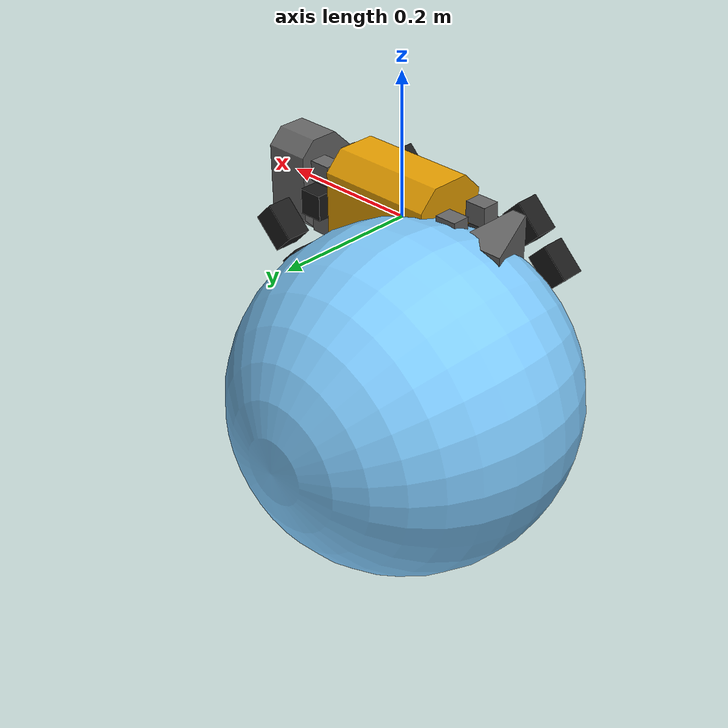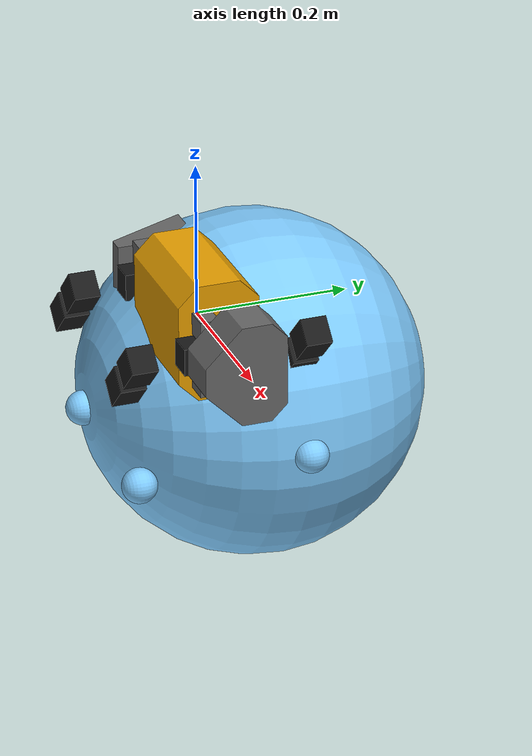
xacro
<?xml version="1.0"?>
<!-- created with Phobos 1.0.1 "Capricious Choutengan" -->
  <robot name="Arctic" xmlns:xacro="http://www.ros.org/wiki/xacro">

    <link name="foot_-12">
      <inertial>
        <origin xyz="0 0 0" rpy="0 0 0"/>
        <mass value="0.1"/>
        <inertia ixx="0.001" ixy="0" ixz="0" iyy="0.001" iyz="0" izz="0.001"/>
      </inertial>
      <visual name="-12">
        <origin xyz="0 0 0.00024" rpy="1.5708 0 0"/>
        <geometry>
          <mesh filename="package://arc_description/meshes/stl/Sphere.003.stl" scale="1.0 1.0 1.0"/>
        </geometry>
        <material name="blue"/>
      </visual>
      <collision name="-12">
        <origin xyz="0 0 0.00024" rpy="1.5708 0 0"/>
        <geometry>
          <sphere radius="0.02278"/>
        </geometry>
      </collision>
    </link>

    <link name="foot_-3">
      <inertial>
        <origin xyz="0 0 0" rpy="0 0 0"/>
        <mass value="0.1"/>
        <inertia ixx="0.001" ixy="0" ixz="0" iyy="0.001" iyz="0" izz="0.001"/>
      </inertial>
      <visual name="-3">
        <origin xyz="0 0 -0.00024" rpy="-1.5708 0 0"/>
        <geometry>
          <mesh filename="package://arc_description/meshes/stl/Sphere.001.stl" scale="1.0 1.0 1.0"/>
        </geometry>
        <material name="blue"/>
      </visual>
      <collision name="-3">
        <origin xyz="0 0 -0.00024" rpy="-1.5708 0 0"/>
        <geometry>
          <sphere radius="0.02278"/>
        </geometry>
      </collision>
    </link>

    <link name="foot_-6">
      <inertial>
        <origin xyz="0 0 0" rpy="0 0 0"/>
        <mass value="0.1"/>
        <inertia ixx="0.001" ixy="0" ixz="0" iyy="0.001" iyz="0" izz="0.001"/>
      </inertial>
      <visual name="-6">
        <origin xyz="0 0 0.00024" rpy="1.5708 0 0"/>
        <geometry>
          <mesh filename="package://arc_description/meshes/stl/Sphere.stl" scale="1.0 1.0 1.0"/>
        </geometry>
        <material name="blue"/>
      </visual>
      <collision name="-6">
        <origin xyz="0 0 0.00024" rpy="1.5708 0 0"/>
        <geometry>
          <sphere radius="0.02278"/>
        </geometry>
      </collision>
    </link>

    <link name="foot_-9">
      <inertial>
        <origin xyz="0 0 0" rpy="0 0 0"/>
        <mass value="0.1"/>
        <inertia ixx="0.001" ixy="0" ixz="0" iyy="0.001" iyz="0" izz="0.001"/>
      </inertial>
      <visual name="-9">
        <origin xyz="0 0 -0.00024" rpy="-1.5708 0 0"/>
        <geometry>
          <mesh filename="package://arc_description/meshes/stl/Sphere.002.stl" scale="1.0 1.0 1.0"/>
        </geometry>
        <material name="blue"/>
      </visual>
      <collision name="-9">
        <origin xyz="0 0 -0.00024" rpy="-1.5708 0 0"/>
        <geometry>
          <sphere radius="0.02278"/>
        </geometry>
      </collision>
    </link>

    <link name="foot_1">
      <inertial>
        <origin xyz="0 0 0" rpy="0 0 0"/>
        <mass value="0.1"/>
        <inertia ixx="0.001" ixy="0" ixz="0" iyy="0.001" iyz="0" izz="0.001"/>
      </inertial>
      <visual name="-1">
        <origin xyz="0.00555 -0.06477 -0.00559" rpy="0 -0.7854 0"/>
        <geometry>
          <box size="0.0356 0.03427 0.0506"/>
        </geometry>
        <material name="black"/>
      </visual>
      <collision name="-1">
        <origin xyz="0.00555 -0.06477 -0.00559" rpy="0 -0.7854 0"/>
        <geometry>
          <box size="0.0356 0.03427 0.0506"/>
        </geometry>
      </collision>
    </link>

    <link name="foot_10">
      <inertial>
        <origin xyz="0 0 0" rpy="0 0 0"/>
        <mass value="0.1"/>
        <inertia ixx="0.001" ixy="0" ixz="0" iyy="0.001" iyz="0" izz="0.001"/>
      </inertial>
      <visual name="-10">
        <origin xyz="-0.00555 0.06525 0.00558" rpy="0 2.35619 0"/>
        <geometry>
          <box size="0.0356 0.03427 0.0506"/>
        </geometry>
        <material name="black"/>
      </visual>
      <collision name="-10">
        <origin xyz="-0.00555 0.06525 0.00558" rpy="0 2.35619 0"/>
        <geometry>
          <box size="0.0356 0.03427 0.0506"/>
        </geometry>
      </collision>
    </link>

    <link name="foot_11">
      <inertial>
        <origin xyz="0 0 0" rpy="0 0 0"/>
        <mass value="0.1"/>
        <inertia ixx="0.001" ixy="0" ixz="0" iyy="0.001" iyz="0" izz="0.001"/>
      </inertial>
      <visual name="-11">
        <origin xyz="-0.03656 0.03692 0.00021" rpy="1.5708 0 0.7854"/>
        <geometry>
          <box size="0.0356 0.03427 0.0506"/>
        </geometry>
        <material name="black"/>
      </visual>
      <collision name="-11">
        <origin xyz="-0.03656 0.03692 0.00021" rpy="1.5708 0 0.7854"/>
        <geometry>
          <box size="0.0356 0.03427 0.0506"/>
        </geometry>
      </collision>
    </link>

    <link name="foot_12">
      <inertial>
        <origin xyz="0 0 0" rpy="0 0 0"/>
        <mass value="0.1"/>
        <inertia ixx="0.001" ixy="0" ixz="0" iyy="0.001" iyz="0" izz="0.001"/>
      </inertial>
    </link>

    <link name="foot_2">
      <inertial>
        <origin xyz="0 0 0" rpy="0 0 0"/>
        <mass value="0.1"/>
        <inertia ixx="0.001" ixy="0" ixz="0" iyy="0.001" iyz="0" izz="0.001"/>
      </inertial>
      <visual name="-2">
        <origin xyz="-0.03656 -0.03692 -0.00027" rpy="-1.5708 0 -0.7854"/>
        <geometry>
          <box size="0.0356 0.03427 0.0506"/>
        </geometry>
        <material name="black"/>
      </visual>
      <collision name="-2">
        <origin xyz="-0.03656 -0.03692 -0.00027" rpy="-1.5708 0 -0.7854"/>
        <geometry>
          <box size="0.0356 0.03427 0.0506"/>
        </geometry>
      </collision>
    </link>

    <link name="foot_3">
      <inertial>
        <origin xyz="0 0 0" rpy="0 0 0"/>
        <mass value="0.1"/>
        <inertia ixx="0.001" ixy="0" ixz="0" iyy="0.001" iyz="0" izz="0.001"/>
      </inertial>
    </link>

    <link name="foot_4">
      <inertial>
        <origin xyz="0 0 0" rpy="0 0 0"/>
        <mass value="0.1"/>
        <inertia ixx="0.001" ixy="0" ixz="0" iyy="0.001" iyz="0" izz="0.001"/>
      </inertial>
      <visual name="-4">
        <origin xyz="0.00555 0.06525 -0.00559" rpy="0 -0.7854 0"/>
        <geometry>
          <box size="0.0356 0.03427 0.0506"/>
        </geometry>
        <material name="black"/>
      </visual>
      <collision name="-4">
        <origin xyz="0.00555 0.06525 -0.00559" rpy="0 -0.7854 0"/>
        <geometry>
          <box size="0.0356 0.03427 0.0506"/>
        </geometry>
      </collision>
    </link>

    <link name="foot_5">
      <inertial>
        <origin xyz="0 0 0" rpy="0 0 0"/>
        <mass value="0.1"/>
        <inertia ixx="0.001" ixy="0" ixz="0" iyy="0.001" iyz="0" izz="0.001"/>
      </inertial>
      <visual name="-5">
        <origin xyz="-0.03656 0.03692 0.00021" rpy="1.5708 0 0.7854"/>
        <geometry>
          <box size="0.0356 0.03427 0.0506"/>
        </geometry>
        <material name="black"/>
      </visual>
      <collision name="-5">
        <origin xyz="-0.03656 0.03692 0.00021" rpy="1.5708 0 0.7854"/>
        <geometry>
          <box size="0.0356 0.03427 0.0506"/>
        </geometry>
      </collision>
    </link>

    <link name="foot_6">
      <inertial>
        <origin xyz="0 0 0" rpy="0 0 0"/>
        <mass value="0.1"/>
        <inertia ixx="0.001" ixy="0" ixz="0" iyy="0.001" iyz="0" izz="0.001"/>
      </inertial>
    </link>

    <link name="foot_7">
      <inertial>
        <origin xyz="0 0 0" rpy="0 0 0"/>
        <mass value="0.1"/>
        <inertia ixx="0.001" ixy="0" ixz="0" iyy="0.001" iyz="0" izz="0.001"/>
      </inertial>
      <visual name="-7">
        <origin xyz="-0.00555 -0.06477 0.00558" rpy="0 2.35619 0"/>
        <geometry>
          <box size="0.0356 0.03427 0.0506"/>
        </geometry>
        <material name="black"/>
      </visual>
      <collision name="-7">
        <origin xyz="-0.00555 -0.06477 0.00558" rpy="0 2.35619 0"/>
        <geometry>
          <box size="0.0356 0.03427 0.0506"/>
        </geometry>
      </collision>
    </link>

    <link name="foot_8">
      <inertial>
        <origin xyz="0 0 0" rpy="0 0 0"/>
        <mass value="0.1"/>
        <inertia ixx="0.001" ixy="0" ixz="0" iyy="0.001" iyz="0" izz="0.001"/>
      </inertial>
      <visual name="-8">
        <origin xyz="-0.03656 -0.03692 -0.00027" rpy="-1.5708 0 -0.7854"/>
        <geometry>
          <box size="0.0356 0.03427 0.0506"/>
        </geometry>
        <material name="black"/>
      </visual>
      <collision name="-8">
        <origin xyz="-0.03656 -0.03692 -0.00027" rpy="-1.5708 0 -0.7854"/>
        <geometry>
          <box size="0.0356 0.03427 0.0506"/>
        </geometry>
      </collision>
    </link>

    <link name="foot_9">
      <inertial>
        <origin xyz="0 0 0" rpy="0 0 0"/>
        <mass value="0.1"/>
        <inertia ixx="0.001" ixy="0" ixz="0" iyy="0.001" iyz="0" izz="0.001"/>
      </inertial>
    </link>

    <link name="root">
      <inertial>
        <origin xyz="0 0 0" rpy="0 0 0"/>
        <mass value="1.0"/>
        <inertia ixx="0.001" ixy="0" ixz="0" iyy="0.001" iyz="0" izz="0.001"/>
      </inertial>
      <visual name="Cube.003">
        <origin xyz="-0.11156 0.02757 0.03673" rpy="0 0 0"/>
        <geometry>
          <box size="0.03085 0.025 0.02849"/>
        </geometry>
        <material name="gray"/>
      </visual>
      <visual name="Cube.004">
        <origin xyz="0.10901 -0.03507 -8e-05" rpy="0 0 0"/>
        <geometry>
          <box size="0.03427 0.0506 0.0356"/>
        </geometry>
        <material name="black"/>
      </visual>
      <visual name="Cube.016">
        <origin xyz="-0.11156 -0.02757 0.03673" rpy="0 0 0"/>
        <geometry>
          <box size="0.03085 0.025 0.02849"/>
        </geometry>
        <material name="gray"/>
      </visual>
      <visual name="Cube.019">
        <origin xyz="0.10901 0.03507 -8e-05" rpy="0 0 0"/>
        <geometry>
          <box size="0.03427 0.0506 0.0356"/>
        </geometry>
        <material name="black"/>
      </visual>
      <visual name="Cube.020">
        <origin xyz="-0.11447 -0.03473 0" rpy="0 0 0"/>
        <geometry>
          <box size="0.03427 0.0506 0.0356"/>
        </geometry>
        <material name="black"/>
      </visual>
      <visual name="Cube.021">
        <origin xyz="-0.11405 0.03507 -8e-05" rpy="0 0 0"/>
        <geometry>
          <box size="0.03427 0.0506 0.0356"/>
        </geometry>
        <material name="black"/>
      </visual>
      <visual name="Cube.022">
        <origin xyz="-0.11156 -0.02757 -0.03673" rpy="0 0 0"/>
        <geometry>
          <box size="0.03085 0.025 0.02849"/>
        </geometry>
        <material name="gray"/>
      </visual>
      <visual name="Cube.023">
        <origin xyz="-0.11156 0.02757 -0.03673" rpy="0 0 0"/>
        <geometry>
          <box size="0.03085 0.025 0.02849"/>
        </geometry>
        <material name="gray"/>
      </visual>
      <visual name="Cube.024">
        <origin xyz="0.11156 0.02757 0.03673" rpy="0 0 0"/>
        <geometry>
          <box size="0.03085 0.025 0.02849"/>
        </geometry>
        <material name="gray"/>
      </visual>
      <visual name="Cube.025">
        <origin xyz="0.11156 0.02757 -0.03673" rpy="0 0 0"/>
        <geometry>
          <box size="0.03085 0.025 0.02849"/>
        </geometry>
        <material name="gray"/>
      </visual>
      <visual name="Cube.026">
        <origin xyz="0.11156 -0.02757 0.03673" rpy="0 0 0"/>
        <geometry>
          <box size="0.03085 0.025 0.02849"/>
        </geometry>
        <material name="gray"/>
      </visual>
      <visual name="Cube.027">
        <origin xyz="0.11156 -0.02757 -0.03673" rpy="0 0 0"/>
        <geometry>
          <box size="0.03085 0.025 0.02849"/>
        </geometry>
        <material name="gray"/>
      </visual>
      <visual name="back">
        <origin xyz="-0.16121 0 0" rpy="0 0 0"/>
        <geometry>
          <mesh filename="package://arc_description/meshes/stl/Cube.042.stl" scale="1.0 1.0 1.0"/>
        </geometry>
        <material name="gray"/>
      </visual>
      <visual name="body">
        <origin xyz="0 0 0" rpy="0 0 0"/>
        <geometry>
          <mesh filename="package://arc_description/meshes/stl/Cube.182.stl" scale="1.0 1.0 1.0"/>
        </geometry>
      </visual>
      <visual name="front">
        <origin xyz="0.16789 0 0.00678" rpy="0 0 0"/>
        <geometry>
          <mesh filename="package://arc_description/meshes/stl/Cube.041.stl" scale="1.0 1.0 1.0"/>
        </geometry>
        <material name="gray"/>
      </visual>
      <collision name="Cube.003">
        <origin xyz="-0.11156 0.02757 0.03673" rpy="0 0 0"/>
        <geometry>
          <box size="0.03085 0.025 0.02849"/>
        </geometry>
      </collision>
      <collision name="Cube.004">
        <origin xyz="0.10901 -0.03507 -8e-05" rpy="0 0 0"/>
        <geometry>
          <box size="0.03427 0.0506 0.0356"/>
        </geometry>
      </collision>
      <collision name="Cube.016">
        <origin xyz="-0.11156 -0.02757 0.03673" rpy="0 0 0"/>
        <geometry>
          <box size="0.03085 0.025 0.02849"/>
        </geometry>
      </collision>
      <collision name="Cube.020">
        <origin xyz="-0.11447 -0.03473 0" rpy="0 0 0"/>
        <geometry>
          <box size="0.03427 0.0506 0.0356"/>
        </geometry>
      </collision>
      <collision name="Cube.021">
        <origin xyz="-0.11405 0.03507 -8e-05" rpy="0 0 0"/>
        <geometry>
          <box size="0.03427 0.0506 0.0356"/>
        </geometry>
      </collision>
      <collision name="Cube.022">
        <origin xyz="-0.11156 -0.02757 -0.03673" rpy="0 0 0"/>
        <geometry>
          <box size="0.03085 0.025 0.02849"/>
        </geometry>
      </collision>
      <collision name="Cube.023">
        <origin xyz="-0.11156 0.02757 -0.03673" rpy="0 0 0"/>
        <geometry>
          <box size="0.03085 0.025 0.02849"/>
        </geometry>
      </collision>
      <collision name="Cube.024">
        <origin xyz="0.11156 0.02757 0.03673" rpy="0 0 0"/>
        <geometry>
          <box size="0.03085 0.025 0.02849"/>
        </geometry>
      </collision>
      <collision name="Cube.025">
        <origin xyz="0.11156 0.02757 -0.03673" rpy="0 0 0"/>
        <geometry>
          <box size="0.03085 0.025 0.02849"/>
        </geometry>
      </collision>
      <collision name="Cube.026">
        <origin xyz="0.11156 -0.02757 0.03673" rpy="0 0 0"/>
        <geometry>
          <box size="0.03085 0.025 0.02849"/>
        </geometry>
      </collision>
      <collision name="Cube.027">
        <origin xyz="0.11156 -0.02757 -0.03673" rpy="0 0 0"/>
        <geometry>
          <box size="0.03085 0.025 0.02849"/>
        </geometry>
      </collision>
      <collision name="back">
        <origin xyz="-0.16121 0 0" rpy="0 0 0"/>
        <geometry>
          <mesh filename="package://arc_description/meshes/stl/Cube.208.stl" scale="1.0 1.0 1.0"/>
        </geometry>
      </collision>
      <collision name="body">
        <origin xyz="0 0 0" rpy="0 0 0"/>
        <geometry>
          <mesh filename="package://arc_description/meshes/stl/Cube.209.stl" scale="1.0 1.0 1.0"/>
        </geometry>
      </collision>
      <collision name="front">
        <origin xyz="0.16789 0 0.00678" rpy="0 0 0"/>
        <geometry>
          <mesh filename="package://arc_description/meshes/stl/Cube.207.stl" scale="1.0 1.0 1.0"/>
        </geometry>
      </collision>
    </link>

    <joint name="foot_-12_" type="fixed">
      <origin xyz="0.05837 0.10775 -4e-05" rpy="0 0 0"/>
      <parent link="foot_12"/>
      <child link="foot_-12"/>
    </joint>

    <joint name="foot_-3_" type="fixed">
      <origin xyz="0.05837 -0.10775 -4e-05" rpy="0 0 0"/>
      <parent link="foot_3"/>
      <child link="foot_-3"/>
    </joint>

    <joint name="foot_-6_" type="fixed">
      <origin xyz="0.05837 0.10775 -4e-05" rpy="0 0 0"/>
      <parent link="foot_6"/>
      <child link="foot_-6"/>
    </joint>

    <joint name="foot_-9_" type="fixed">
      <origin xyz="0.05837 -0.10775 -4e-05" rpy="0 0 0"/>
      <parent link="foot_9"/>
      <child link="foot_-9"/>
    </joint>

    <joint name="foot_1_" type="revolute">
      <origin xyz="0.10966 -0.04864 -0.00018" rpy="0 1.5708 0"/>
      <parent link="root"/>
      <child link="foot_1"/>
      <axis xyz="0 0 1.0"/>
      <limit lower="-1.57" upper="1.57" effort="3.5" velocity="5.9"/>
    </joint>

    <joint name="foot_10_" type="revolute">
      <origin xyz="-0.11341 0.04816 -0.00018" rpy="0 -1.5708 0"/>
      <parent link="root"/>
      <child link="foot_10"/>
      <axis xyz="0 0 1.0"/>
      <limit lower="-1.57" upper="1.57" effort="3.5" velocity="5.9"/>
    </joint>

    <joint name="foot_11_" type="revolute">
      <origin xyz="-0.01511 0.06504 0.01513" rpy="-1.5708 1.5708 0"/>
      <parent link="foot_10"/>
      <child link="foot_11"/>
      <axis xyz="0 0 1.0"/>
      <limit lower="-1.57" upper="1.57" effort="3.5" velocity="5.9"/>
    </joint>

    <joint name="foot_12_" type="revolute">
      <origin xyz="-0.04607 0.04607 0.00053" rpy="0 0 0"/>
      <parent link="foot_11"/>
      <child link="foot_12"/>
      <axis xyz="0 0 1.0"/>
      <limit lower="-1.57" upper="1.57" effort="3.5" velocity="5.9"/>
    </joint>

    <joint name="foot_2_" type="revolute">
      <origin xyz="0.01511 -0.06504 -0.01513" rpy="1.5708 -1.5708 0"/>
      <parent link="foot_1"/>
      <child link="foot_2"/>
      <axis xyz="0 0 1.0"/>
      <limit lower="-1.57" upper="1.57" effort="3.5" velocity="5.9"/>
    </joint>

    <joint name="foot_3_" type="revolute">
      <origin xyz="-0.04607 -0.04607 0.00053" rpy="0 0 0"/>
      <parent link="foot_2"/>
      <child link="foot_3"/>
      <axis xyz="0 0 1.0"/>
      <limit lower="-1.57" upper="1.57" effort="3.5" velocity="5.9"/>
    </joint>

    <joint name="foot_4_" type="revolute">
      <origin xyz="0.10966 0.04816 -0.00018" rpy="0 1.5708 0"/>
      <parent link="root"/>
      <child link="foot_4"/>
      <axis xyz="0 0 1.0"/>
      <limit lower="-1.57" upper="1.57" effort="3.5" velocity="5.9"/>
    </joint>

    <joint name="foot_5_" type="revolute">
      <origin xyz="0.01511 0.06504 -0.01513" rpy="-1.5708 -1.5708 0"/>
      <parent link="foot_4"/>
      <child link="foot_5"/>
      <axis xyz="0 0 1.0"/>
      <limit lower="-1.57" upper="1.57" effort="3.5" velocity="5.9"/>
    </joint>

    <joint name="foot_6_" type="revolute">
      <origin xyz="-0.04607 0.04607 0.00053" rpy="0 0 0"/>
      <parent link="foot_5"/>
      <child link="foot_6"/>
      <axis xyz="0 0 1.0"/>
      <limit lower="-1.57" upper="1.57" effort="3.5" velocity="5.9"/>
    </joint>

    <joint name="foot_7_" type="revolute">
      <origin xyz="-0.11341 -0.04864 -0.00018" rpy="0 -1.5708 0"/>
      <parent link="root"/>
      <child link="foot_7"/>
      <axis xyz="0 0 1.0"/>
      <limit lower="-1.57" upper="1.57" effort="3.5" velocity="5.9"/>
    </joint>

    <joint name="foot_8_" type="revolute">
      <origin xyz="-0.01511 -0.06504 0.01513" rpy="1.5708 1.5708 0"/>
      <parent link="foot_7"/>
      <child link="foot_8"/>
      <axis xyz="0 0 1.0"/>
      <limit lower="-1.57" upper="1.57" effort="3.5" velocity="5.9"/>
    </joint>

    <joint name="foot_9_" type="revolute">
      <origin xyz="-0.04607 -0.04607 0.00053" rpy="0 0 0"/>
      <parent link="foot_8"/>
      <child link="foot_9"/>
      <axis xyz="0 0 1.0"/>
      <limit lower="-1.57" upper="1.57" effort="3.5" velocity="5.9"/>
    </joint>

        <material name="black">
      <color rgba="0.1 0.1 0.1 1.0"/>
    </material>

    <material name="gray">
      <color rgba="0.4 0.4 0.4 1.0"/>
    </material>

    <material name="blue">
      <color rgba="0.5 0.8 1 1.0"/>
    </material>

    <link name="dummy"></link>

    <joint name="dummy_joint" type="fixed">
        <parent link="dummy"/>
        <child link="root"/>
    </joint>

    <!-- Plugin for connnect ROS and Gazebo -->
    <gazebo>
      <plugin name="gazebo_ros_control" filename="libgazebo_ros_control.so">
        <robotNamespace>/Arctic</robotNamespace>
      </plugin>
    </gazebo>

    <!-- Transmission -->
    <transmission name="tran1">
      <type>transmission_interface/SimpleTransmission</type>
      <joint name="foot_1_">
        <hardwareInterface>hardware_interface/EffortJointInterface</hardwareInterface>
      </joint>
      <actuator name="motor1">
      <hardwareInterface>hardware_interface/EffortJointInterface</hardwareInterface>
      <mechanicalReduction>1</mechanicalReduction>
      </actuator>
    </transmission>

    <transmission name="tran2">
      <type>transmission_interface/SimpleTransmission</type>
      <joint name="foot_2_">
        <hardwareInterface>hardware_interface/EffortJointInterface</hardwareInterface>
      </joint>
      <actuator name="motor2">
      <hardwareInterface>hardware_interface/EffortJointInterface</hardwareInterface>
      <mechanicalReduction>1</mechanicalReduction>
      </actuator>
    </transmission>

    <transmission name="tran3">
      <type>transmission_interface/SimpleTransmission</type>
      <joint name="foot_3_">
        <hardwareInterface>hardware_interface/EffortJointInterface</hardwareInterface>
      </joint>
      <actuator name="motor3">
      <hardwareInterface>hardware_interface/EffortJointInterface</hardwareInterface>
      <mechanicalReduction>1</mechanicalReduction>
      </actuator>
    </transmission>

    <transmission name="tran4">
      <type>transmission_interface/SimpleTransmission</type>
      <joint name="foot_4_">
        <hardwareInterface>hardware_interface/EffortJointInterface</hardwareInterface>
      </joint>
      <actuator name="motor4">
      <hardwareInterface>hardware_interface/EffortJointInterface</hardwareInterface>
      <mechanicalReduction>1</mechanicalReduction>
      </actuator>
    </transmission>

    <transmission name="tran5">
      <type>transmission_interface/SimpleTransmission</type>
      <joint name="foot_5_">
        <hardwareInterface>hardware_interface/EffortJointInterface</hardwareInterface>
      </joint>
      <actuator name="motor5">
      <hardwareInterface>hardware_interface/EffortJointInterface</hardwareInterface>
      <mechanicalReduction>1</mechanicalReduction>
      </actuator>
    </transmission>

    <transmission name="tran6">
      <type>transmission_interface/SimpleTransmission</type>
      <joint name="foot_6_">
        <hardwareInterface>hardware_interface/EffortJointInterface</hardwareInterface>
      </joint>
      <actuator name="motor6">
      <hardwareInterface>hardware_interface/EffortJointInterface</hardwareInterface>
      <mechanicalReduction>1</mechanicalReduction>
      </actuator>
    </transmission>

    <transmission name="tran7">
      <type>transmission_interface/SimpleTransmission</type>
      <joint name="foot_7_">
        <hardwareInterface>hardware_interface/EffortJointInterface</hardwareInterface>
      </joint>
      <actuator name="motor7">
      <hardwareInterface>hardware_interface/EffortJointInterface</hardwareInterface>
      <mechanicalReduction>1</mechanicalReduction>
      </actuator>
    </transmission>

    <transmission name="tran8">
      <type>transmission_interface/SimpleTransmission</type>
      <joint name="foot_8_">
        <hardwareInterface>hardware_interface/EffortJointInterface</hardwareInterface>
      </joint>
      <actuator name="motor8">
      <hardwareInterface>hardware_interface/EffortJointInterface</hardwareInterface>
      <mechanicalReduction>1</mechanicalReduction>
      </actuator>
    </transmission>

    <transmission name="tran9">
      <type>transmission_interface/SimpleTransmission</type>
      <joint name="foot_9_">
        <hardwareInterface>hardware_interface/EffortJointInterface</hardwareInterface>
      </joint>
      <actuator name="motor9">
      <hardwareInterface>hardware_interface/EffortJointInterface</hardwareInterface>
      <mechanicalReduction>1</mechanicalReduction>
      </actuator>
    </transmission>

    <transmission name="tran10">
      <type>transmission_interface/SimpleTransmission</type>
      <joint name="foot_10_">
        <hardwareInterface>hardware_interface/EffortJointInterface</hardwareInterface>
      </joint>
      <actuator name="motor10">
      <hardwareInterface>hardware_interface/EffortJointInterface</hardwareInterface>
      <mechanicalReduction>1</mechanicalReduction>
      </actuator>
    </transmission>

    <transmission name="tran11">
      <type>transmission_interface/SimpleTransmission</type>
      <joint name="foot_11_">
        <hardwareInterface>hardware_interface/EffortJointInterface</hardwareInterface>
      </joint>
      <actuator name="motor11">
      <hardwareInterface>hardware_interface/EffortJointInterface</hardwareInterface>
      <mechanicalReduction>1</mechanicalReduction>
      </actuator>
    </transmission>

    <transmission name="tran12">
      <type>transmission_interface/SimpleTransmission</type>
      <joint name="foot_12_">
        <hardwareInterface>hardware_interface/EffortJointInterface</hardwareInterface>
      </joint>
      <actuator name="motor12">
      <hardwareInterface>hardware_interface/EffortJointInterface</hardwareInterface>
      <mechanicalReduction>1</mechanicalReduction>
      </actuator>
    </transmission>

    <!-- FR4 friction -->
  <gazebo reference="foot_-3">
    <mu1>200.0</mu1>
    <mu2>100.0</mu2>
    <minDepth>0.0002</minDepth>
    <kp  value="1000000.0"/>
    <kd  value="100.0"/>
    <material>Gazebo/Black</material>
  </gazebo>

  <!-- FL4 friction -->
  <gazebo reference="foot_-6">
    <mu1>200.0</mu1>
    <mu2>100.0</mu2>
    <minDepth>0.0002</minDepth>
    <kp  value="1000000.0"/>
    <kd  value="100.0"/>
    <material>Gazebo/Black</material>
  </gazebo>

  <!-- RR4 friction -->
  <gazebo reference="foot_-9">
    <mu1>200.0</mu1>
    <mu2>100.0</mu2>
    <minDepth>0.0002</minDepth>
    <kp  value="1000000.0"/>
    <kd  value="100.0"/>
    <material>Gazebo/Black</material>
  </gazebo>

  <!-- RL4 friction -->
  <gazebo reference="foot_-12">
    <mu1>200.0</mu1>
    <mu2>100.0</mu2>
    <minDepth>0.0002</minDepth>
    <kp  value="1000000.0"/>
    <kd  value="100.0"/>
    <material>Gazebo/Black</material>
  </gazebo>

  </robot>
